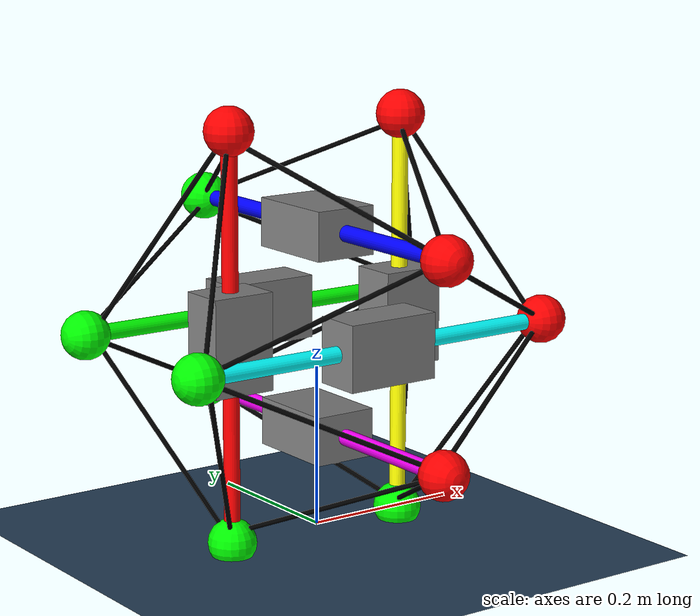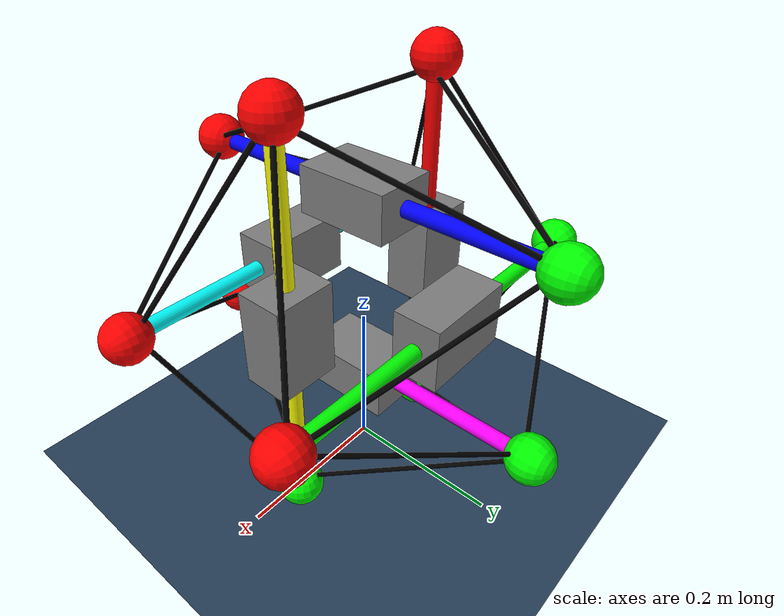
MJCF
<mujoco model="scene">
  <include file="tensegrity_real_model.xml"/>

  <visual>
    <headlight diffuse="0.6 0.6 0.6" ambient="0.5 0.5 0.3" specular="0 0 0"/>
    </visual>

    <asset>
      <texture type="skybox" builtin="gradient" rgb1="0.3 0.5 0.7" rgb2="0.1 0.1 0.1" width="512" height="3072"/>
      <texture type="2d" name="groundplane" builtin="checker" mark="edge" rgb1="0.2 0.3 0.4" rgb2="0.1 0.2 0.3" markrgb="0.8 0.8 0.8" width="300" height="300"/>
      <material name="groundplane" texture="groundplane" texuniform="true" texrepeat="5 5"
        reflectance="0.2"/>
    </asset>

    <worldbody>
      <light pos="0 0 1.5" dir="0 0 -1" directional="true"/>
      <geom name="floor" pos="0 0 -0.015" size="0 0 0.05" type="plane" material="groundplane"/>
    </worldbody>

    <contact>
      <pair geom1="actuator1" geom2="actuator2" friction="5.0 5.0"/>
      <pair geom1="actuator1" geom2="actuator3" friction="5.0 5.0"/>
      <pair geom1="actuator1" geom2="actuator4" friction="5.0 5.0"/>
      <pair geom1="actuator1" geom2="actuator5" friction="5.0 5.0"/>
      <pair geom1="actuator1" geom2="actuator6" friction="5.0 5.0"/>
      <pair geom1="actuator2" geom2="actuator3" friction="5.0 5.0"/>
      <pair geom1="actuator2" geom2="actuator4" friction="5.0 5.0"/>
      <pair geom1="actuator2" geom2="actuator5" friction="5.0 5.0"/>
      <pair geom1="actuator2" geom2="actuator6" friction="5.0 5.0"/>
      <pair geom1="actuator3" geom2="actuator4" friction="5.0 5.0"/>
      <pair geom1="actuator3" geom2="actuator5" friction="5.0 5.0"/>
      <pair geom1="actuator3" geom2="actuator6" friction="5.0 5.0"/>
      <pair geom1="actuator4" geom2="actuator5" friction="5.0 5.0"/>
      <pair geom1="actuator4" geom2="actuator6" friction="5.0 5.0"/>
      <pair geom1="actuator5" geom2="actuator6" friction="5.0 5.0"/>
      <pair geom1="floor" geom2="link1" friction="5.0 5.0"/>
      <pair geom1="floor" geom2="link2" friction="5.0 5.0"/>
      <pair geom1="floor" geom2="link3" friction="5.0 5.0"/>
      <pair geom1="floor" geom2="link4" friction="5.0 5.0"/>
      <pair geom1="floor" geom2="link5" friction="5.0 5.0"/>
      <pair geom1="floor" geom2="link6" friction="5.0 5.0"/>
      <pair geom1="floor" geom2="sphere_1t" friction="5.0 5.0"/>
      <pair geom1="floor" geom2="sphere_1b" friction="5.0 5.0"/>
      <pair geom1="floor" geom2="sphere_2t" friction="5.0 5.0"/>
      <pair geom1="floor" geom2="sphere_2b" friction="5.0 5.0"/>
      <pair geom1="floor" geom2="sphere_3t" friction="5.0 5.0"/>
      <pair geom1="floor" geom2="sphere_3b" friction="5.0 5.0"/>
      <pair geom1="floor" geom2="sphere_4t" friction="5.0 5.0"/>
      <pair geom1="floor" geom2="sphere_4b" friction="5.0 5.0"/>
      <pair geom1="floor" geom2="sphere_5t" friction="5.0 5.0"/>
      <pair geom1="floor" geom2="sphere_5b" friction="5.0 5.0"/>
      <pair geom1="floor" geom2="sphere_6t" friction="5.0 5.0"/>
      <pair geom1="floor" geom2="sphere_6b" friction="5.0 5.0"/>
      <pair geom1="link1" geom2="link2"/>
      <pair geom1="link1" geom2="link3"/>
      <pair geom1="link1" geom2="link4"/>
      <pair geom1="link1" geom2="link5"/>
      <pair geom1="link1" geom2="link6"/>
      <pair geom1="link2" geom2="link3"/>
      <pair geom1="link2" geom2="link4"/>
      <pair geom1="link2" geom2="link5"/>
      <pair geom1="link2" geom2="link6"/>
      <pair geom1="link3" geom2="link4"/>
      <pair geom1="link3" geom2="link5"/>
      <pair geom1="link3" geom2="link6"/>
      <pair geom1="link4" geom2="link5"/>
      <pair geom1="link4" geom2="link6"/>
      <pair geom1="link5" geom2="link6"/>
    </contact>

  </mujoco>

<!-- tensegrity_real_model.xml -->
<mujoco model="tensegrity">
  <option timestep="0.005" collision="predefined" cone="elliptic" impratio="100"/>
  <default>
    <site size="0.005" rgba="1 1 1 1"/>
    <default class="tendon_actuator">
      <general ctrllimited="true" ctrlrange="-16.0 0" dyntype="filter" dynprm="0.0179"/> <!-- change parameters later -->
    </default>
    <default class="tendon_spatial">
      <tendon damping="0.0703" stiffness="0" frictionloss="0.5" limited="true" range="0.0 0.30"/>
    </default>
    <default class="tendon_spatial_static">
      <tendon damping="500" stiffness="0" frictionloss="0.5"/>
    </default>
    <default class="touch_prop_top">
      <site pos="0 0 0.25" rgba="1 0 0 1" size=".030 .030 .030" type="ellipsoid"/>
    </default>
    <default class="touch_prop_bottom">
      <site pos="0 0 -0.25" rgba="0 1 0 1" size=".030 .030 .030" type="ellipsoid"/>
    </default>
  </default>
  <worldbody>
    <light pos="0 1 1" dir="0 -1 -1" diffuse="1 1 1"/>
    <camera name="robot_track_camera1" pos="0 -2 2" zaxis="0 -0.2 0.2" mode="trackcom" fovy="45"/>
    <camera name="robot_track_camera2" pos="0 -3 3" zaxis="0 -0.2 0.2" mode="trackcom" fovy="45"/>
    <camera name="robot_track_camera3" pos="0 0 3" euler="0 0 0" mode="trackcom" fovy="45"/>

      <!-- link -->
    <body name="link1" pos="-0.125 0 0.25" euler="0 0 0">
      <geom name="link1" type="cylinder" size="0.01 0.25" mass="0.06" rgba="1 0 0 1" pos="0 0 0"/>
      <body pos="0 0 0" name="actuator1">
        <geom name="actuator1" type="box" size="0.040 0.030 0.06" mass="0.6" pos="0 0 0"/>
      </body>
      <body pos="0 0 0.25" name="sphere_1t">
        <geom name="sphere_1t" type="sphere" size="0.015" mass="0.05" pos="0 0 0"/>
      </body>
        <body pos="0 0 -0.25" name="sphere_1b">
        <geom name="sphere_1b" type="sphere" size="0.015" mass="0.05" pos="0 0 0"/>
      </body>
      <joint name="link1" type="free"/>
      <site name="imu_link1" pos="0 0 0"/>
      <site name="link1_top" class="touch_prop_top"/>
      <site name="link1_top1" pos="0.005 0.005 0.24"/>
      <site name="link1_top2" pos="-0.005 0.005 0.24"/>
      <site name="link1_top3" pos="-0.005 -0.005 0.24"/>
      <site name="link1_top4" pos="0.005 -0.005 0.24"/>
      <site name="link1_bottom" class="touch_prop_bottom"/>
      <site name="link1_bottom1" pos="0.005 0.005 -0.24"/>
      <site name="link1_bottom2" pos="-0.005 0.005 -0.24"/>
      <site name="link1_bottom3" pos="-0.005 -0.005 -0.24"/>
      <site name="link1_bottom4" pos="0.005 -0.005 -0.24"/>
    </body>

    <body name="link2" pos="0.125 0 0.25" euler="0 0 0">
      <geom name="link2" type="cylinder" size="0.01 0.25" mass="0.06" rgba="1 1 0 1" pos="0 0 0"/>
      <body pos="0 0 0" name="actuator2">
        <geom name="actuator2" type="box" size="0.040 0.030 0.06" mass="0.6" pos="0 0 0"/>
      </body>
      <body pos="0 0 0.25" name="sphere_2t">
        <geom name="sphere_2t" type="sphere" size="0.015" mass="0.05" pos="0.0 0.0 0.0"/>
      </body>
      <body pos="0 0 -0.25" name="sphere_2b">
        <geom name="sphere_2b" type="sphere" size="0.015" mass="0.05" pos="0.0 0.0 0"/>
      </body>
      <joint name="link2" type="free"/>
      <site name="imu_link2" pos="0 0 0"/>
      <site name="link2_top" class="touch_prop_top"/>
      <site name="link2_top1" pos="0.005 0.005 0.24"/>
      <site name="link2_top2" pos="-0.005 0.005 0.24"/>
      <site name="link2_top3" pos="-0.005 -0.005 0.24"/>
      <site name="link2_top4" pos="0.005 -0.005 0.24"/>
      <site name="link2_bottom" class="touch_prop_bottom"/>
      <site name="link2_bottom1" pos="0.005 0.005 -0.24"/>
      <site name="link2_bottom2" pos="-0.005 0.005 -0.24"/>
      <site name="link2_bottom3" pos="-0.005 -0.005 -0.24"/>
      <site name="link2_bottom4" pos="0.005 -0.005 -0.24"/>
    </body>

    <body name="link3" pos="0 0.125 0.25" euler="0 90 0">
      <geom name="link3" type="cylinder" size="0.01 0.25" mass="0.06" rgba="0 1 0 1" pos="0 0 0"/>
      <body pos="0 0 0" name="actuator3">
        <geom name="actuator3" type="box" size="0.040 0.030 0.06" mass="0.6" pos="0 0 0"/>
      </body>
      <body pos="0 0 0.25" name="sphere_3t">
        <geom name="sphere_3t" type="sphere" size="0.015" mass="0.05" pos="0.0 0.0 0.0"/>
      </body>
      <body pos="0 0 -0.25" name="sphere_3b">
        <geom name="sphere_3b" type="sphere" size="0.015" mass="0.05" pos="0.0 0.0 0"/>
      </body>
      <joint name="link3" type="free"/>
      <site name="imu_link3" pos="0 0 0"/>
      <site name="link3_top" class="touch_prop_top"/>
      <site name="link3_top1" pos="0.005 0.005 0.24"/>
      <site name="link3_top2" pos="-0.005 0.005 0.24"/>
      <site name="link3_top3" pos="-0.005 -0.005 0.24"/>
      <site name="link3_top4" pos="0.005 -0.005 0.24"/>
      <site name="link3_bottom" class="touch_prop_bottom"/>
      <site name="link3_bottom1" pos="0.005 0.005 -0.24"/>
      <site name="link3_bottom2" pos="-0.005 0.005 -0.24"/>
      <site name="link3_bottom3" pos="-0.005 -0.005 -0.24"/>
      <site name="link3_bottom4" pos="0.005 -0.005 -0.24"/>
    </body>

    <body name="link4" pos="0 -0.125 0.25" euler="0 90 0">
      <geom name="link4" type="cylinder" size="0.01 0.25" mass="0.06" rgba="0 1 1 1" pos="0 0 0"/>
      <body pos="0 0 0" name="actuator4">
        <geom name="actuator4" type="box" size="0.040 0.030 0.06" mass="0.6" pos="0 0 0"/>
      </body>
      <body pos="0 0 0.25" name="sphere_4t">
        <geom name="sphere_4t" type="sphere" size="0.015" mass="0.05" pos="0.0 0.0 0.0"/>
      </body>
      <body pos="0 0 -0.25" name="sphere_4b">
        <geom name="sphere_4b" type="sphere" size="0.015" mass="0.05" pos="0.0 0.0 0"/>
      </body>
      <joint name="link4" type="free"/>
      <site name="imu_link4" pos="0 0 0"/>
      <site name="link4_top" class="touch_prop_top"/>
      <site name="link4_top1" pos="0.005 0.005 0.24"/>
      <site name="link4_top2" pos="-0.005 0.005 0.24"/>
      <site name="link4_top3" pos="-0.005 -0.005 0.24"/>
      <site name="link4_top4" pos="0.005 -0.005 0.24"/>
      <site name="link4_bottom" class="touch_prop_bottom"/>
      <site name="link4_bottom1" pos="0.005 0.005 -0.24"/>
      <site name="link4_bottom2" pos="-0.005 0.005 -0.24"/>
      <site name="link4_bottom3" pos="-0.005 -0.005 -0.24"/>
      <site name="link4_bottom4" pos="0.005 -0.005 -0.24"/>
    </body>

    <body name="link5" pos="0 0 0.375" euler="90 0 0">
      <geom name="link5" type="cylinder" size="0.01 0.25" mass="0.06" rgba="0 0 1 1" pos="0 0 0"/>
      <body pos="0 0 0" name="actuator5">
        <geom name="actuator5" type="box" size="0.040 0.030 0.06" mass="0.6" pos="0 0 0"/>
      </body>
      <body pos="0 0 0.25" name="sphere_5t">
        <geom name="sphere_5t" type="sphere" size="0.015" mass="0.05" pos="0.0 0.0 0.0"/>
      </body>
      <body pos="0 0 -0.25" name="sphere_5b">
        <geom name="sphere_5b" type="sphere" size="0.015" mass="0.05" pos="0.0 0.0 0"/>
      </body>
      <joint name="link5" type="free"/>
      <site name="imu_link5" pos="0 0 0"/>
      <site name="link5_top" class="touch_prop_top"/>
      <site name="link5_top1" pos="0.005 0.005 0.24"/>
      <site name="link5_top2" pos="-0.005 0.005 0.24"/>
      <site name="link5_top3" pos="-0.005 -0.005 0.24"/>
      <site name="link5_top4" pos="0.005 -0.005 0.24"/>
      <site name="link5_bottom" class="touch_prop_bottom"/>
      <site name="link5_bottom1" pos="0.005 0.005 -0.24"/>
      <site name="link5_bottom2" pos="-0.005 0.005 -0.24"/>
      <site name="link5_bottom3" pos="-0.005 -0.005 -0.24"/>
      <site name="link5_bottom4" pos="0.005 -0.005 -0.24"/>
    </body>

    <body name="link6" pos="0 0 0.125" euler="90 0 0">
      <geom name="link6" type="cylinder" size="0.01 0.25" mass="0.06" rgba="1 0 1 1" pos="0 0 0"/>
      <body pos="0 0 0" name="actuator6">
        <geom name="actuator6" type="box" size="0.040 0.030 0.06" mass="0.6" pos="0 0 0"/>
      </body>
      <body pos="0 0 0.25" name="sphere_6t">
        <geom name="sphere_6t" type="sphere" size="0.015" mass="0.05" pos="0.0 0.0 0.0"/>
      </body>
      <body pos="0 0 -0.25" name="sphere_6b">
        <geom name="sphere_6b" type="sphere" size="0.015" mass="0.05" pos="0.0 0.0 0"/>
      </body>
      <joint name="link6" type="free"/>
      <site name="imu_link6" pos="0 0 0"/>
      <site name="link6_top" class="touch_prop_top"/>
      <site name="link6_top1" pos="0.005 0.005 0.24"/>
      <site name="link6_top2" pos="-0.005 0.005 0.24"/>
      <site name="link6_top3" pos="-0.005 -0.005 0.24"/>
      <site name="link6_top4" pos="0.005 -0.005 0.24"/>
      <site name="link6_bottom" class="touch_prop_bottom"/>
      <site name="link6_bottom1" pos="0.005 0.005 -0.24"/>
      <site name="link6_bottom2" pos="-0.005 0.005 -0.24"/>
      <site name="link6_bottom3" pos="-0.005 -0.005 -0.24"/>
      <site name="link6_bottom4" pos="0.005 -0.005 -0.24"/>
    </body>

  </worldbody>

  <tendon>
    <!-- link1 -->
    <spatial name="link1t_3b" class="tendon_spatial" rgba="0 0 0 1">
      <site site="link1_top2"/>
      <site site="link3_bottom3"/>
    </spatial>
    <spatial name="link1t_4b" class="tendon_spatial" rgba="0 0 0 1">
      <site site="link1_top3"/>
      <site site="link4_bottom1"/>
    </spatial>
    <spatial name="link1b_3b" class="tendon_spatial" rgba="0 0 0 1">
      <site site="link1_bottom2"/>
      <site site="link3_bottom4"/>
    </spatial>
    <spatial name="link1b_4b" class="tendon_spatial" rgba="0 0 0 1">
      <site site="link1_bottom3"/>
      <site site="link4_bottom4"/>
    </spatial>
    <spatial name="link1b_6t" class="tendon_spatial" rgba="0 0 0 1">
      <site site="link1_bottom1"/>
      <site site="link6_top3"/>
    </spatial>
    <spatial name="link1b_6b" class="tendon_spatial" rgba="0 0 0 1">
      <site site="link1_bottom1"/>
      <site site="link6_bottom3"/>
    </spatial>
    <spatial name="link1t_5t" class="tendon_spatial" rgba="0 0 0 1">
      <site site="link1_top1"/>
      <site site="link5_top2"/>
    </spatial>
    <spatial name="link1t_5b" class="tendon_spatial" rgba="0 0 0 1">
      <site site="link1_top4"/>
      <site site="link5_bottom2"/>
    </spatial>

    <!-- link2 -->
    <spatial name="link2t_3t" class="tendon_spatial" rgba="0 0 0 1">
      <site site="link2_top1"/>
      <site site="link3_top3"/>
    </spatial>
    <spatial name="link2t_4t" class="tendon_spatial" rgba="0 0 0 1">
      <site site="link2_top4"/>
      <site site="link4_top2"/>
    </spatial>
    <spatial name="link2b_3t" class="tendon_spatial" rgba="0 0 0 1">
      <site site="link2_bottom1"/>
      <site site="link3_top4"/>
    </spatial>
    <spatial name="link2b_4t" class="tendon_spatial" rgba="0 0 0 1">
      <site site="link2_bottom4"/>
      <site site="link4_top1"/>
    </spatial>
    <spatial name="link2b_6t" class="tendon_spatial" rgba="0 0 0 1">
      <site site="link2_bottom3"/>
      <site site="link6_top4"/>
    </spatial>
    <spatial name="link2b_6b" class="tendon_spatial" rgba="0 0 0 1">
      <site site="link2_bottom2"/>
      <site site="link6_bottom4"/>
    </spatial>
    <spatial name="link2t_5t" class="tendon_spatial" rgba="0 0 0 1">
      <site site="link2_top3"/>
      <site site="link5_top1"/>
    </spatial>
    <spatial name="link2t_5b" class="tendon_spatial" rgba="0 0 0 1">
      <site site="link2_top2"/>
      <site site="link5_bottom1"/>
    </spatial>

    <!-- link3 -->
    <spatial name="link3t_5b" class="tendon_spatial" rgba="0 0 0 1">
      <site site="link3_top2"/>
      <site site="link5_bottom3"/>
    </spatial>
    <spatial name="link3b_5b" class="tendon_spatial" rgba="0 0 0 1">
      <site site="link3_bottom2"/>
      <site site="link5_bottom3"/>
    </spatial>
    <spatial name="link3t_6b" class="tendon_spatial" rgba="0 0 0 1">
      <site site="link3_top1"/>
      <site site="link6_bottom1"/>
    </spatial>
    <spatial name="link3b_6b" class="tendon_spatial" rgba="0 0 0 1">
      <site site="link3_bottom1"/>
      <site site="link6_bottom2"/>
    </spatial>

    <!-- link4 -->
    <spatial name="link4t_5t" class="tendon_spatial" rgba="0 0 0 1">
      <site site="link4_top3"/>
      <site site="link5_top4"/>
    </spatial>
    <spatial name="link4b_5t" class="tendon_spatial" rgba="0 0 0 1">
      <site site="link4_bottom3"/>
      <site site="link5_top3"/>
    </spatial>
    <spatial name="link4t_6t" class="tendon_spatial" rgba="0 0 0 1">
      <site site="link4_top4"/>
      <site site="link6_top1"/>
    </spatial>
    <spatial name="link4b_6t" class="tendon_spatial" rgba="0 0 0 1">
      <site site="link4_bottom4"/>
      <site site="link6_top2"/>
    </spatial>
  </tendon>

  <actuator>
    <!-- tention-controlled actuators-->
    <general name="link1t_3b" tendon="link1t_3b"  class="tendon_actuator"/>
    <general name="link1t_4b" tendon="link1t_4b"  class="tendon_actuator"/>
    <general name="link1b_3b" tendon="link1b_3b"  class="tendon_actuator"/>
    <general name="link1b_4b" tendon="link1b_4b"  class="tendon_actuator"/>
    <general name="link1b_6t" tendon="link1b_6t"  class="tendon_actuator"/>
    <general name="link1b_6b" tendon="link1b_6b"  class="tendon_actuator"/>
    <general name="link1t_5b" tendon="link1t_5b"  class="tendon_actuator"/>
    <general name="link1t_5t" tendon="link1t_5t"  class="tendon_actuator"/>
    <general name="link2t_4t" tendon="link2t_4t"  class="tendon_actuator"/>
    <general name="link2t_3t" tendon="link2t_3t"  class="tendon_actuator"/>
    <general name="link2b_3t" tendon="link2b_3t"  class="tendon_actuator"/>
    <general name="link2b_4t" tendon="link2b_4t"  class="tendon_actuator"/>
    <general name="link2b_6t" tendon="link2b_6t"  class="tendon_actuator"/>
    <general name="link2t_5t" tendon="link2t_5t"  class="tendon_actuator"/>
    <general name="link2b_6b" tendon="link2b_6b"  class="tendon_actuator"/>
    <general name="link2t_5b" tendon="link2t_5b"  class="tendon_actuator"/>
    <general name="link3t_5b" tendon="link3t_5b"  class="tendon_actuator"/>
    <general name="link3b_5b" tendon="link3b_5b"  class="tendon_actuator"/>
    <general name="link3t_6b" tendon="link3t_6b"  class="tendon_actuator"/>
    <general name="link3b_6b" tendon="link3b_6b"  class="tendon_actuator"/>
    <general name="link4t_5t" tendon="link4t_5t"  class="tendon_actuator"/>
    <general name="link4b_5t" tendon="link4b_5t"  class="tendon_actuator"/>
    <general name="link4t_6t" tendon="link4t_6t"  class="tendon_actuator"/>
    <general name="link4b_6t" tendon="link4b_6t"  class="tendon_actuator"/>

  </actuator>

  <sensor>
    <!-- define imu sensor -->
    <accelerometer name="imu_acc_link1" site="imu_link1"/>
    <gyro name="imu_gyro_link1" site="imu_link1"/>

    <accelerometer name="imu_acc_link2" site="imu_link2"/>
    <gyro name="imu_gyro_link2" site="imu_link2"/>

    <accelerometer name="imu_acc_link3" site="imu_link3"/>
    <gyro name="imu_gyro_link3" site="imu_link3"/>

    <accelerometer name="imu_acc_link4" site="imu_link4"/>
    <gyro name="imu_gyro_link4" site="imu_link4"/>

    <accelerometer name="imu_acc_link5" site="imu_link5"/>
    <gyro name="imu_gyro_link5" site="imu_link5"/>

    <accelerometer name="imu_acc_link6" site="imu_link6"/>
    <gyro name="imu_gyro_link6" site="imu_link6"/>

    <!-- define touch sensor -->
    <touch name="touch_link1_top" site="link1_top"/>
    <touch name="touch_link1_bottom" site="link1_bottom"/>
    <touch name="touch_link2_top" site="link2_top"/>
    <touch name="touch_link2_bottom" site="link2_bottom"/>
    <touch name="touch_link3_top" site="link3_top"/>
    <touch name="touch_link3_bottom" site="link3_bottom"/>
    <touch name="touch_link4_top" site="link4_top"/>
    <touch name="touch_link4_bottom" site="link4_bottom"/>
    <touch name="touch_link5_top" site="link5_top"/>
    <touch name="touch_link5_bottom" site="link5_bottom"/>
    <touch name="touch_link6_top" site="link6_top"/>
    <touch name="touch_link6_bottom" site="link6_bottom"/>
  </sensor>

</mujoco>
